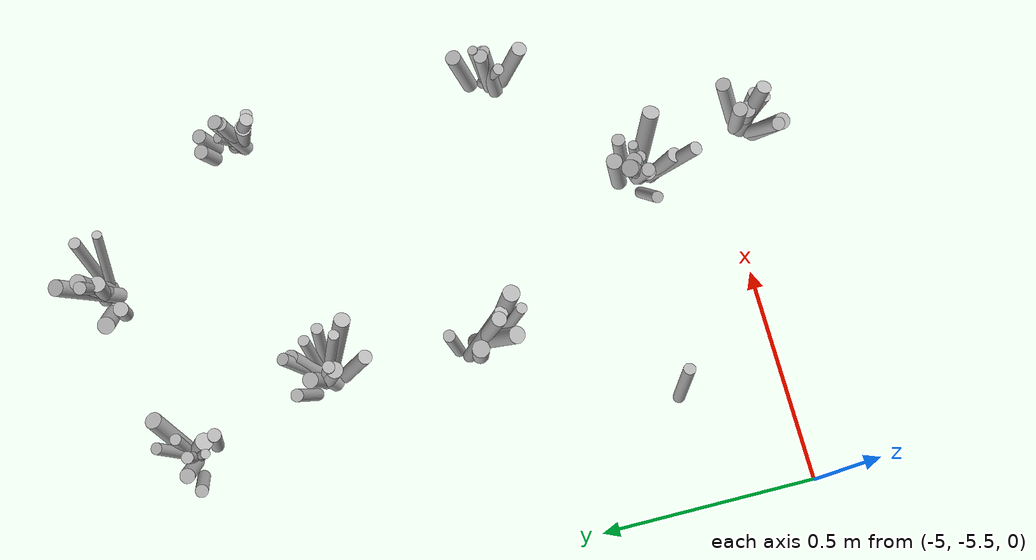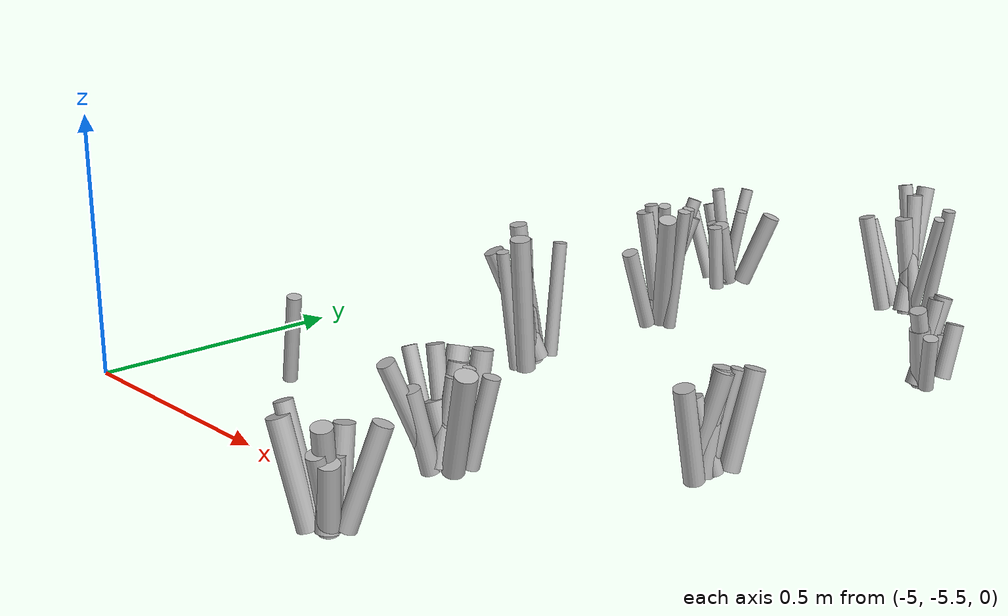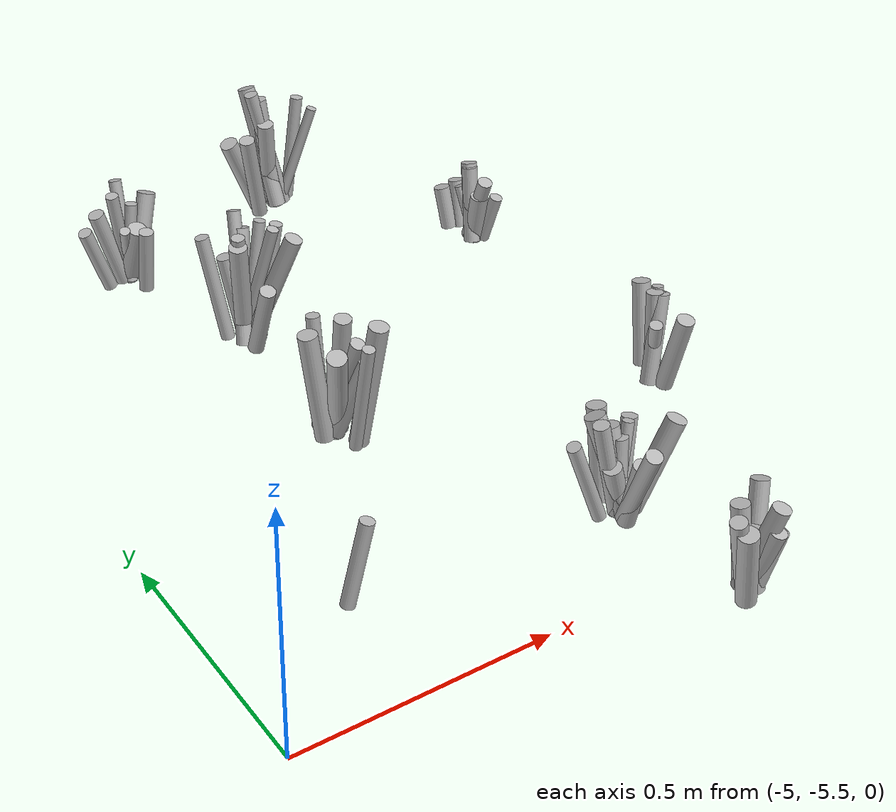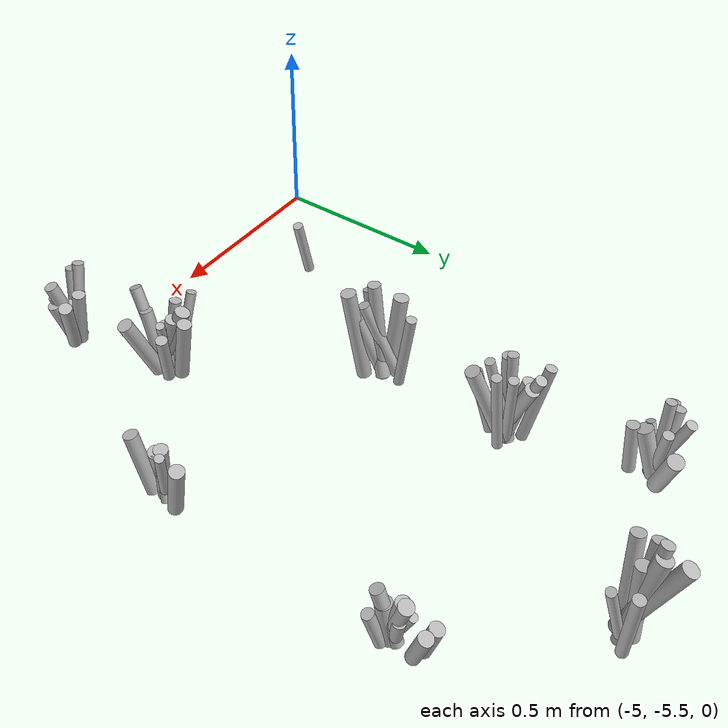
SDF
<sdf version="1.6">
 <world name="default">
  <model name="tussocks">
   <static>true</static>
   <link name="tuft1_0">
    <pose>-4.5446 -4.4314 0.1068 0 0.1881 2.2617</pose>
    <visual name="tuft1_0_v">
     <geometry><cylinder><radius>0.0142</radius><length>0.2321</length></cylinder></geometry>
     <material>
      <script>
       <uri>model://bushfire/materials/scripts</uri>
       <uri>model://bushfire/materials/textures</uri>
       <name>Bushfire/Tussock</name>
      </script>
     </material>
    </visual>
   </link>
   <link name="tuft1_1">
    <pose>-4.5042 -4.5470 0.0808 0 0.3341 4.7514</pose>
    <visual name="tuft1_1_v">
     <geometry><cylinder><radius>0.0164</radius><length>0.1757</length></cylinder></geometry>
     <material>
      <script>
       <uri>model://bushfire/materials/scripts</uri>
       <uri>model://bushfire/materials/textures</uri>
       <name>Bushfire/Tussock</name>
      </script>
     </material>
    </visual>
   </link>
   <link name="tuft1_2">
    <pose>-4.4842 -4.4979 0.1278 0 0.2650 5.5376</pose>
    <visual name="tuft1_2_v">
     <geometry><cylinder><radius>0.0122</radius><length>0.2778</length></cylinder></geometry>
     <material>
      <script>
       <uri>model://bushfire/materials/scripts</uri>
       <uri>model://bushfire/materials/textures</uri>
       <name>Bushfire/Foliage2</name>
      </script>
     </material>
    </visual>
   </link>
   <link name="tuft1_3">
    <pose>-4.5161 -4.4903 0.1133 0 0.1554 4.1128</pose>
    <visual name="tuft1_3_v">
     <geometry><cylinder><radius>0.0185</radius><length>0.2462</length></cylinder></geometry>
     <material>
      <script>
       <uri>model://bushfire/materials/scripts</uri>
       <uri>model://bushfire/materials/textures</uri>
       <name>Bushfire/Foliage2</name>
      </script>
     </material>
    </visual>
   </link>
   <link name="tuft1_4">
    <pose>-4.4976 -4.4518 0.1254 0 0.3795 1.2145</pose>
    <visual name="tuft1_4_v">
     <geometry><cylinder><radius>0.0139</radius><length>0.2725</length></cylinder></geometry>
     <material>
      <script>
       <uri>model://bushfire/materials/scripts</uri>
       <uri>model://bushfire/materials/textures</uri>
       <name>Bushfire/Tussock</name>
      </script>
     </material>
    </visual>
   </link>
   <link name="tuft1_5">
    <pose>-4.4618 -4.5160 0.1204 0 0.3725 5.5704</pose>
    <visual name="tuft1_5_v">
     <geometry><cylinder><radius>0.0182</radius><length>0.2617</length></cylinder></geometry>
     <material>
      <script>
       <uri>model://bushfire/materials/scripts</uri>
       <uri>model://bushfire/materials/textures</uri>
       <name>Bushfire/Foliage2</name>
      </script>
     </material>
    </visual>
   </link>
   <link name="tuft1_6">
    <pose>-4.5155 -4.4644 0.0887 0 0.2072 2.1664</pose>
    <visual name="tuft1_6_v">
     <geometry><cylinder><radius>0.0178</radius><length>0.1929</length></cylinder></geometry>
     <material>
      <script>
       <uri>model://bushfire/materials/scripts</uri>
       <uri>model://bushfire/materials/textures</uri>
       <name>Bushfire/Tussock</name>
      </script>
     </material>
    </visual>
   </link>
   <link name="tuft1_7">
    <pose>-4.4964 -4.4582 0.1091 0 0.3884 1.0586</pose>
    <visual name="tuft1_7_v">
     <geometry><cylinder><radius>0.0178</radius><length>0.2371</length></cylinder></geometry>
     <material>
      <script>
       <uri>model://bushfire/materials/scripts</uri>
       <uri>model://bushfire/materials/textures</uri>
       <name>Bushfire/Foliage2</name>
      </script>
     </material>
    </visual>
   </link>
   <link name="tuft1_8">
    <pose>-4.5124 -4.4846 0.1196 0 0.1055 4.0924</pose>
    <visual name="tuft1_8_v">
     <geometry><cylinder><radius>0.0137</radius><length>0.2601</length></cylinder></geometry>
     <material>
      <script>
       <uri>model://bushfire/materials/scripts</uri>
       <uri>model://bushfire/materials/textures</uri>
       <name>Bushfire/Foliage2</name>
      </script>
     </material>
    </visual>
   </link>
   <link name="tuft1_9">
    <pose>-4.4758 -4.4657 0.1192 0 0.2084 0.3467</pose>
    <visual name="tuft1_9_v">
     <geometry><cylinder><radius>0.0125</radius><length>0.2591</length></cylinder></geometry>
     <material>
      <script>
       <uri>model://bushfire/materials/scripts</uri>
       <uri>model://bushfire/materials/textures</uri>
       <name>Bushfire/Foliage2</name>
      </script>
     </material>
    </visual>
   </link>
   <link name="tuft1_10">
    <pose>-4.4538 -4.4863 0.1202 0 0.1659 6.1084</pose>
    <visual name="tuft1_10_v">
     <geometry><cylinder><radius>0.0130</radius><length>0.2612</length></cylinder></geometry>
     <material>
      <script>
       <uri>model://bushfire/materials/scripts</uri>
       <uri>model://bushfire/materials/textures</uri>
       <name>Bushfire/Foliage2</name>
      </script>
     </material>
    </visual>
   </link>
   <link name="tuft54_0">
    <pose>-4.5988 -4.1261 0.1008 0 0.2894 1.4062</pose>
    <visual name="tuft54_0_v">
     <geometry><cylinder><radius>0.0131</radius><length>0.2191</length></cylinder></geometry>
     <material>
      <script>
       <uri>model://bushfire/materials/scripts</uri>
       <uri>model://bushfire/materials/textures</uri>
       <name>Bushfire/Foliage2</name>
      </script>
     </material>
    </visual>
   </link>
   <link name="tuft54_1">
    <pose>-4.5914 -4.1393 0.0787 0 0.1779 0.4872</pose>
    <visual name="tuft54_1_v">
     <geometry><cylinder><radius>0.0131</radius><length>0.1710</length></cylinder></geometry>
     <material>
      <script>
       <uri>model://bushfire/materials/scripts</uri>
       <uri>model://bushfire/materials/textures</uri>
       <name>Bushfire/Tussock</name>
      </script>
     </material>
    </visual>
   </link>
   <link name="tuft54_2">
    <pose>-4.5980 -4.1659 0.0668 0 0.3237 4.8944</pose>
    <visual name="tuft54_2_v">
     <geometry><cylinder><radius>0.0200</radius><length>0.1451</length></cylinder></geometry>
     <material>
      <script>
       <uri>model://bushfire/materials/scripts</uri>
       <uri>model://bushfire/materials/textures</uri>
       <name>Bushfire/Tussock</name>
      </script>
     </material>
    </visual>
   </link>
   <link name="tuft54_3">
    <pose>-4.6388 -4.1432 0.0822 0 0.2684 3.0982</pose>
    <visual name="tuft54_3_v">
     <geometry><cylinder><radius>0.0168</radius><length>0.1787</length></cylinder></geometry>
     <material>
      <script>
       <uri>model://bushfire/materials/scripts</uri>
       <uri>model://bushfire/materials/textures</uri>
       <name>Bushfire/Foliage2</name>
      </script>
     </material>
    </visual>
   </link>
   <link name="tuft54_4">
    <pose>-4.6160 -4.1507 0.1009 0 0.1346 3.5373</pose>
    <visual name="tuft54_4_v">
     <geometry><cylinder><radius>0.0133</radius><length>0.2193</length></cylinder></geometry>
     <material>
      <script>
       <uri>model://bushfire/materials/scripts</uri>
       <uri>model://bushfire/materials/textures</uri>
       <name>Bushfire/Foliage2</name>
      </script>
     </material>
    </visual>
   </link>
   <link name="tuft54_5">
    <pose>-4.5877 -4.2057 0.0664 0 0.1088 4.9423</pose>
    <visual name="tuft54_5_v">
     <geometry><cylinder><radius>0.0154</radius><length>0.1444</length></cylinder></geometry>
     <material>
      <script>
       <uri>model://bushfire/materials/scripts</uri>
       <uri>model://bushfire/materials/textures</uri>
       <name>Bushfire/Foliage2</name>
      </script>
     </material>
    </visual>
   </link>
   <link name="tuft54_6">
    <pose>-4.6750 -4.1582 0.0724 0 0.3174 3.3224</pose>
    <visual name="tuft54_6_v">
     <geometry><cylinder><radius>0.0145</radius><length>0.1575</length></cylinder></geometry>
     <material>
      <script>
       <uri>model://bushfire/materials/scripts</uri>
       <uri>model://bushfire/materials/textures</uri>
       <name>Bushfire/Tussock</name>
      </script>
     </material>
    </visual>
   </link>
   <link name="tuft54_7">
    <pose>-4.6083 -4.1586 0.0690 0 0.4115 4.2774</pose>
    <visual name="tuft54_7_v">
     <geometry><cylinder><radius>0.0110</radius><length>0.1500</length></cylinder></geometry>
     <material>
      <script>
       <uri>model://bushfire/materials/scripts</uri>
       <uri>model://bushfire/materials/textures</uri>
       <name>Bushfire/Foliage2</name>
      </script>
     </material>
    </visual>
   </link>
   <link name="tuft54_8">
    <pose>-4.5495 -4.1097 0.0764 0 0.3818 0.5899</pose>
    <visual name="tuft54_8_v">
     <geometry><cylinder><radius>0.0194</radius><length>0.1660</length></cylinder></geometry>
     <material>
      <script>
       <uri>model://bushfire/materials/scripts</uri>
       <uri>model://bushfire/materials/textures</uri>
       <name>Bushfire/Tussock</name>
      </script>
     </material>
    </visual>
   </link>
   <link name="tuft74_0">
    <pose>-4.1282 -5.5980 0.0577 0 0.2500 5.8108</pose>
    <visual name="tuft74_0_v">
     <geometry><cylinder><radius>0.0182</radius><length>0.1254</length></cylinder></geometry>
     <material>
      <script>
       <uri>model://bushfire/materials/scripts</uri>
       <uri>model://bushfire/materials/textures</uri>
       <name>Bushfire/Foliage2</name>
      </script>
     </material>
    </visual>
   </link>
   <link name="tuft74_1">
    <pose>-4.1438 -5.5845 0.0549 0 0.1490 1.7702</pose>
    <visual name="tuft74_1_v">
     <geometry><cylinder><radius>0.0196</radius><length>0.1194</length></cylinder></geometry>
     <material>
      <script>
       <uri>model://bushfire/materials/scripts</uri>
       <uri>model://bushfire/materials/textures</uri>
       <name>Bushfire/Tussock</name>
      </script>
     </material>
    </visual>
   </link>
   <link name="tuft74_2">
    <pose>-4.1505 -5.5584 0.0753 0 0.1431 1.8139</pose>
    <visual name="tuft74_2_v">
     <geometry><cylinder><radius>0.0171</radius><length>0.1637</length></cylinder></geometry>
     <material>
      <script>
       <uri>model://bushfire/materials/scripts</uri>
       <uri>model://bushfire/materials/textures</uri>
       <name>Bushfire/Tussock</name>
      </script>
     </material>
    </visual>
   </link>
   <link name="tuft74_3">
    <pose>-4.1898 -5.6168 0.0835 0 0.2369 3.6461</pose>
    <visual name="tuft74_3_v">
     <geometry><cylinder><radius>0.0188</radius><length>0.1815</length></cylinder></geometry>
     <material>
      <script>
       <uri>model://bushfire/materials/scripts</uri>
       <uri>model://bushfire/materials/textures</uri>
       <name>Bushfire/Foliage2</name>
      </script>
     </material>
    </visual>
   </link>
   <link name="tuft74_4">
    <pose>-4.1393 -5.5935 0.0853 0 0.2703 5.5599</pose>
    <visual name="tuft74_4_v">
     <geometry><cylinder><radius>0.0173</radius><length>0.1855</length></cylinder></geometry>
     <material>
      <script>
       <uri>model://bushfire/materials/scripts</uri>
       <uri>model://bushfire/materials/textures</uri>
       <name>Bushfire/Foliage2</name>
      </script>
     </material>
    </visual>
   </link>
   <link name="tuft74_5">
    <pose>-4.1371 -5.6010 0.0645 0 0.2687 5.2008</pose>
    <visual name="tuft74_5_v">
     <geometry><cylinder><radius>0.0159</radius><length>0.1402</length></cylinder></geometry>
     <material>
      <script>
       <uri>model://bushfire/materials/scripts</uri>
       <uri>model://bushfire/materials/textures</uri>
       <name>Bushfire/Foliage2</name>
      </script>
     </material>
    </visual>
   </link>
   <link name="tuft74_6">
    <pose>-4.1917 -5.6038 0.0927 0 0.2678 3.4027</pose>
    <visual name="tuft74_6_v">
     <geometry><cylinder><radius>0.0155</radius><length>0.2016</length></cylinder></geometry>
     <material>
      <script>
       <uri>model://bushfire/materials/scripts</uri>
       <uri>model://bushfire/materials/textures</uri>
       <name>Bushfire/Tussock</name>
      </script>
     </material>
    </visual>
   </link>
   <link name="tuft74_7">
    <pose>-4.1079 -5.5468 0.0821 0 0.3442 0.9031</pose>
    <visual name="tuft74_7_v">
     <geometry><cylinder><radius>0.0172</radius><length>0.1784</length></cylinder></geometry>
     <material>
      <script>
       <uri>model://bushfire/materials/scripts</uri>
       <uri>model://bushfire/materials/textures</uri>
       <name>Bushfire/Tussock</name>
      </script>
     </material>
    </visual>
   </link>
   <link name="tuft83_0">
    <pose>-3.8984 -5.0197 0.0505 0 0.2912 0.9681</pose>
    <visual name="tuft83_0_v">
     <geometry><cylinder><radius>0.0136</radius><length>0.1097</length></cylinder></geometry>
     <material>
      <script>
       <uri>model://bushfire/materials/scripts</uri>
       <uri>model://bushfire/materials/textures</uri>
       <name>Bushfire/Tussock</name>
      </script>
     </material>
    </visual>
   </link>
   <link name="tuft83_1">
    <pose>-3.8834 -5.0008 0.0859 0 0.2292 0.9046</pose>
    <visual name="tuft83_1_v">
     <geometry><cylinder><radius>0.0114</radius><length>0.1867</length></cylinder></geometry>
     <material>
      <script>
       <uri>model://bushfire/materials/scripts</uri>
       <uri>model://bushfire/materials/textures</uri>
       <name>Bushfire/Foliage2</name>
      </script>
     </material>
    </visual>
   </link>
   <link name="tuft83_3">
    <pose>-3.8915 -5.0725 0.0801 0 0.2196 4.8630</pose>
    <visual name="tuft83_3_v">
     <geometry><cylinder><radius>0.0178</radius><length>0.1741</length></cylinder></geometry>
     <material>
      <script>
       <uri>model://bushfire/materials/scripts</uri>
       <uri>model://bushfire/materials/textures</uri>
       <name>Bushfire/Tussock</name>
      </script>
     </material>
    </visual>
   </link>
   <link name="tuft83_5">
    <pose>-3.8909 -5.0139 0.0842 0 0.1884 0.7054</pose>
    <visual name="tuft83_5_v">
     <geometry><cylinder><radius>0.0118</radius><length>0.1830</length></cylinder></geometry>
     <material>
      <script>
       <uri>model://bushfire/materials/scripts</uri>
       <uri>model://bushfire/materials/textures</uri>
       <name>Bushfire/Tussock</name>
      </script>
     </material>
    </visual>
   </link>
   <link name="tuft83_6">
    <pose>-3.8979 -5.0199 0.0855 0 0.2604 0.6688</pose>
    <visual name="tuft83_6_v">
     <geometry><cylinder><radius>0.0170</radius><length>0.1858</length></cylinder></geometry>
     <material>
      <script>
       <uri>model://bushfire/materials/scripts</uri>
       <uri>model://bushfire/materials/textures</uri>
       <name>Bushfire/Tussock</name>
      </script>
     </material>
    </visual>
   </link>
   <link name="tuft83_8">
    <pose>-3.8951 -5.0116 0.0856 0 0.1600 1.1538</pose>
    <visual name="tuft83_8_v">
     <geometry><cylinder><radius>0.0167</radius><length>0.1860</length></cylinder></geometry>
     <material>
      <script>
       <uri>model://bushfire/materials/scripts</uri>
       <uri>model://bushfire/materials/textures</uri>
       <name>Bushfire/Foliage2</name>
      </script>
     </material>
    </visual>
   </link>
   <link name="tuft83_10">
    <pose>-3.8789 -4.9578 0.0803 0 0.2483 1.2593</pose>
    <visual name="tuft83_10_v">
     <geometry><cylinder><radius>0.0181</radius><length>0.1745</length></cylinder></geometry>
     <material>
      <script>
       <uri>model://bushfire/materials/scripts</uri>
       <uri>model://bushfire/materials/textures</uri>
       <name>Bushfire/Foliage2</name>
      </script>
     </material>
    </visual>
   </link>
   <link name="tuft83_11">
    <pose>-3.9005 -5.0224 0.0640 0 0.2754 4.0171</pose>
    <visual name="tuft83_11_v">
     <geometry><cylinder><radius>0.0131</radius><length>0.1392</length></cylinder></geometry>
     <material>
      <script>
       <uri>model://bushfire/materials/scripts</uri>
       <uri>model://bushfire/materials/textures</uri>
       <name>Bushfire/Tussock</name>
      </script>
     </material>
    </visual>
   </link>
   <link name="tuft97_5">
    <pose>-4.7240 -5.2579 0.0814 0 0.2148 6.1157</pose>
    <visual name="tuft97_5_v">
     <geometry><cylinder><radius>0.0139</radius><length>0.1770</length></cylinder></geometry>
     <material>
      <script>
       <uri>model://bushfire/materials/scripts</uri>
       <uri>model://bushfire/materials/textures</uri>
       <name>Bushfire/Foliage2</name>
      </script>
     </material>
    </visual>
   </link>
   <link name="tuft132_0">
    <pose>-4.2312 -5.2998 0.0951 0 0.2023 2.8387</pose>
    <visual name="tuft132_0_v">
     <geometry><cylinder><radius>0.0154</radius><length>0.2067</length></cylinder></geometry>
     <material>
      <script>
       <uri>model://bushfire/materials/scripts</uri>
       <uri>model://bushfire/materials/textures</uri>
       <name>Bushfire/Tussock</name>
      </script>
     </material>
    </visual>
   </link>
   <link name="tuft132_1">
    <pose>-4.2164 -5.3552 0.0708 0 0.2354 4.5913</pose>
    <visual name="tuft132_1_v">
     <geometry><cylinder><radius>0.0173</radius><length>0.1539</length></cylinder></geometry>
     <material>
      <script>
       <uri>model://bushfire/materials/scripts</uri>
       <uri>model://bushfire/materials/textures</uri>
       <name>Bushfire/Foliage2</name>
      </script>
     </material>
    </visual>
   </link>
   <link name="tuft132_2">
    <pose>-4.2089 -5.3023 0.0727 0 0.1460 1.1917</pose>
    <visual name="tuft132_2_v">
     <geometry><cylinder><radius>0.0156</radius><length>0.1579</length></cylinder></geometry>
     <material>
      <script>
       <uri>model://bushfire/materials/scripts</uri>
       <uri>model://bushfire/materials/textures</uri>
       <name>Bushfire/Foliage2</name>
      </script>
     </material>
    </visual>
   </link>
   <link name="tuft132_3">
    <pose>-4.1970 -5.2955 0.0826 0 0.2544 0.6738</pose>
    <visual name="tuft132_3_v">
     <geometry><cylinder><radius>0.0113</radius><length>0.1795</length></cylinder></geometry>
     <material>
      <script>
       <uri>model://bushfire/materials/scripts</uri>
       <uri>model://bushfire/materials/textures</uri>
       <name>Bushfire/Foliage2</name>
      </script>
     </material>
    </visual>
   </link>
   <link name="tuft132_4">
    <pose>-4.1685 -5.2681 0.0748 0 0.2310 0.7381</pose>
    <visual name="tuft132_4_v">
     <geometry><cylinder><radius>0.0153</radius><length>0.1627</length></cylinder></geometry>
     <material>
      <script>
       <uri>model://bushfire/materials/scripts</uri>
       <uri>model://bushfire/materials/textures</uri>
       <name>Bushfire/Tussock</name>
      </script>
     </material>
    </visual>
   </link>
   <link name="tuft132_5">
    <pose>-4.2098 -5.2447 0.0879 0 0.1861 1.5600</pose>
    <visual name="tuft132_5_v">
     <geometry><cylinder><radius>0.0184</radius><length>0.1910</length></cylinder></geometry>
     <material>
      <script>
       <uri>model://bushfire/materials/scripts</uri>
       <uri>model://bushfire/materials/textures</uri>
       <name>Bushfire/Tussock</name>
      </script>
     </material>
    </visual>
   </link>
   <link name="tuft132_6">
    <pose>-4.2807 -5.3015 0.0886 0 0.3475 3.0734</pose>
    <visual name="tuft132_6_v">
     <geometry><cylinder><radius>0.0133</radius><length>0.1926</length></cylinder></geometry>
     <material>
      <script>
       <uri>model://bushfire/materials/scripts</uri>
       <uri>model://bushfire/materials/textures</uri>
       <name>Bushfire/Tussock</name>
      </script>
     </material>
    </visual>
   </link>
   <link name="tuft132_7">
    <pose>-4.2173 -5.3077 0.0528 0 0.2961 3.3478</pose>
    <visual name="tuft132_7_v">
     <geometry><cylinder><radius>0.0183</radius><length>0.1147</length></cylinder></geometry>
     <material>
      <script>
       <uri>model://bushfire/materials/scripts</uri>
       <uri>model://bushfire/materials/textures</uri>
       <name>Bushfire/Foliage2</name>
      </script>
     </material>
    </visual>
   </link>
   <link name="tuft132_8">
    <pose>-4.2117 -5.2975 0.0829 0 0.2725 1.7146</pose>
    <visual name="tuft132_8_v">
     <geometry><cylinder><radius>0.0182</radius><length>0.1802</length></cylinder></geometry>
     <material>
      <script>
       <uri>model://bushfire/materials/scripts</uri>
       <uri>model://bushfire/materials/textures</uri>
       <name>Bushfire/Tussock</name>
      </script>
     </material>
    </visual>
   </link>
   <link name="tuft132_9">
    <pose>-4.2222 -5.3714 0.0981 0 0.3893 4.5338</pose>
    <visual name="tuft132_9_v">
     <geometry><cylinder><radius>0.0157</radius><length>0.2133</length></cylinder></geometry>
     <material>
      <script>
       <uri>model://bushfire/materials/scripts</uri>
       <uri>model://bushfire/materials/textures</uri>
       <name>Bushfire/Tussock</name>
      </script>
     </material>
    </visual>
   </link>
   <link name="tuft132_10">
    <pose>-4.2182 -5.2909 0.0936 0 0.3894 2.0382</pose>
    <visual name="tuft132_10_v">
     <geometry><cylinder><radius>0.0199</radius><length>0.2036</length></cylinder></geometry>
     <material>
      <script>
       <uri>model://bushfire/materials/scripts</uri>
       <uri>model://bushfire/materials/textures</uri>
       <name>Bushfire/Foliage2</name>
      </script>
     </material>
    </visual>
   </link>
   <link name="tuft132_11">
    <pose>-4.1516 -5.3272 0.0920 0 0.3504 5.9411</pose>
    <visual name="tuft132_11_v">
     <geometry><cylinder><radius>0.0195</radius><length>0.2000</length></cylinder></geometry>
     <material>
      <script>
       <uri>model://bushfire/materials/scripts</uri>
       <uri>model://bushfire/materials/textures</uri>
       <name>Bushfire/Foliage2</name>
      </script>
     </material>
    </visual>
   </link>
   <link name="tuft147_0">
    <pose>-4.1955 -4.0250 0.1184 0 0.1370 2.1381</pose>
    <visual name="tuft147_0_v">
     <geometry><cylinder><radius>0.0184</radius><length>0.2574</length></cylinder></geometry>
     <material>
      <script>
       <uri>model://bushfire/materials/scripts</uri>
       <uri>model://bushfire/materials/textures</uri>
       <name>Bushfire/Tussock</name>
      </script>
     </material>
    </visual>
   </link>
   <link name="tuft147_1">
    <pose>-4.1980 -4.0076 0.1251 0 0.3410 1.7628</pose>
    <visual name="tuft147_1_v">
     <geometry><cylinder><radius>0.0186</radius><length>0.2720</length></cylinder></geometry>
     <material>
      <script>
       <uri>model://bushfire/materials/scripts</uri>
       <uri>model://bushfire/materials/textures</uri>
       <name>Bushfire/Tussock</name>
      </script>
     </material>
    </visual>
   </link>
   <link name="tuft147_2">
    <pose>-4.2546 -4.0682 0.0954 0 0.2148 3.7397</pose>
    <visual name="tuft147_2_v">
     <geometry><cylinder><radius>0.0168</radius><length>0.2074</length></cylinder></geometry>
     <material>
      <script>
       <uri>model://bushfire/materials/scripts</uri>
       <uri>model://bushfire/materials/textures</uri>
       <name>Bushfire/Tussock</name>
      </script>
     </material>
    </visual>
   </link>
   <link name="tuft147_4">
    <pose>-4.1945 -4.0269 0.1289 0 0.2250 2.7760</pose>
    <visual name="tuft147_4_v">
     <geometry><cylinder><radius>0.0146</radius><length>0.2801</length></cylinder></geometry>
     <material>
      <script>
       <uri>model://bushfire/materials/scripts</uri>
       <uri>model://bushfire/materials/textures</uri>
       <name>Bushfire/Foliage2</name>
      </script>
     </material>
    </visual>
   </link>
   <link name="tuft147_5">
    <pose>-4.1971 -4.0309 0.0960 0 0.1355 4.0709</pose>
    <visual name="tuft147_5_v">
     <geometry><cylinder><radius>0.0179</radius><length>0.2087</length></cylinder></geometry>
     <material>
      <script>
       <uri>model://bushfire/materials/scripts</uri>
       <uri>model://bushfire/materials/textures</uri>
       <name>Bushfire/Tussock</name>
      </script>
     </material>
    </visual>
   </link>
   <link name="tuft147_6">
    <pose>-4.1292 -4.0192 0.1100 0 0.1547 0.1191</pose>
    <visual name="tuft147_6_v">
     <geometry><cylinder><radius>0.0134</radius><length>0.2391</length></cylinder></geometry>
     <material>
      <script>
       <uri>model://bushfire/materials/scripts</uri>
       <uri>model://bushfire/materials/textures</uri>
       <name>Bushfire/Tussock</name>
      </script>
     </material>
    </visual>
   </link>
   <link name="tuft147_7">
    <pose>-4.1362 -4.0518 0.1082 0 0.3245 5.8799</pose>
    <visual name="tuft147_7_v">
     <geometry><cylinder><radius>0.0110</radius><length>0.2352</length></cylinder></geometry>
     <material>
      <script>
       <uri>model://bushfire/materials/scripts</uri>
       <uri>model://bushfire/materials/textures</uri>
       <name>Bushfire/Tussock</name>
      </script>
     </material>
    </visual>
   </link>
   <link name="tuft147_8">
    <pose>-4.2616 -4.0347 0.0876 0 0.3717 3.2555</pose>
    <visual name="tuft147_8_v">
     <geometry><cylinder><radius>0.0193</radius><length>0.1905</length></cylinder></geometry>
     <material>
      <script>
       <uri>model://bushfire/materials/scripts</uri>
       <uri>model://bushfire/materials/textures</uri>
       <name>Bushfire/Foliage2</name>
      </script>
     </material>
    </visual>
   </link>
   <link name="tuft164_0">
    <pose>-3.9207 -4.3298 0.0431 0 0.2490 1.8646</pose>
    <visual name="tuft164_0_v">
     <geometry><cylinder><radius>0.0171</radius><length>0.0938</length></cylinder></geometry>
     <material>
      <script>
       <uri>model://bushfire/materials/scripts</uri>
       <uri>model://bushfire/materials/textures</uri>
       <name>Bushfire/Foliage2</name>
      </script>
     </material>
    </visual>
   </link>
   <link name="tuft164_1">
    <pose>-3.8983 -4.4170 0.0737 0 0.3089 4.8150</pose>
    <visual name="tuft164_1_v">
     <geometry><cylinder><radius>0.0158</radius><length>0.1601</length></cylinder></geometry>
     <material>
      <script>
       <uri>model://bushfire/materials/scripts</uri>
       <uri>model://bushfire/materials/textures</uri>
       <name>Bushfire/Tussock</name>
      </script>
     </material>
    </visual>
   </link>
   <link name="tuft164_3">
    <pose>-3.8996 -4.4173 0.0532 0 0.1696 4.7508</pose>
    <visual name="tuft164_3_v">
     <geometry><cylinder><radius>0.0193</radius><length>0.1155</length></cylinder></geometry>
     <material>
      <script>
       <uri>model://bushfire/materials/scripts</uri>
       <uri>model://bushfire/materials/textures</uri>
       <name>Bushfire/Foliage2</name>
      </script>
     </material>
    </visual>
   </link>
   <link name="tuft164_4">
    <pose>-3.9002 -4.3967 0.0770 0 0.2046 1.2372</pose>
    <visual name="tuft164_4_v">
     <geometry><cylinder><radius>0.0166</radius><length>0.1674</length></cylinder></geometry>
     <material>
      <script>
       <uri>model://bushfire/materials/scripts</uri>
       <uri>model://bushfire/materials/textures</uri>
       <name>Bushfire/Foliage2</name>
      </script>
     </material>
    </visual>
   </link>
   <link name="tuft164_5">
    <pose>-3.9027 -4.3864 0.0541 0 0.3914 1.7860</pose>
    <visual name="tuft164_5_v">
     <geometry><cylinder><radius>0.0113</radius><length>0.1177</length></cylinder></geometry>
     <material>
      <script>
       <uri>model://bushfire/materials/scripts</uri>
       <uri>model://bushfire/materials/textures</uri>
       <name>Bushfire/Foliage2</name>
      </script>
     </material>
    </visual>
   </link>
   <link name="tuft164_6">
    <pose>-3.8739 -4.4302 0.0503 0 0.2572 5.3874</pose>
    <visual name="tuft164_6_v">
     <geometry><cylinder><radius>0.0140</radius><length>0.1094</length></cylinder></geometry>
     <material>
      <script>
       <uri>model://bushfire/materials/scripts</uri>
       <uri>model://bushfire/materials/textures</uri>
       <name>Bushfire/Tussock</name>
      </script>
     </material>
    </visual>
   </link>
   <link name="tuft164_8">
    <pose>-3.8969 -4.3923 0.0462 0 0.2000 0.9508</pose>
    <visual name="tuft164_8_v">
     <geometry><cylinder><radius>0.0150</radius><length>0.1005</length></cylinder></geometry>
     <material>
      <script>
       <uri>model://bushfire/materials/scripts</uri>
       <uri>model://bushfire/materials/textures</uri>
       <name>Bushfire/Foliage2</name>
      </script>
     </material>
    </visual>
   </link>
   <link name="tuft164_9">
    <pose>-3.8990 -4.3940 0.0799 0 0.3066 1.1729</pose>
    <visual name="tuft164_9_v">
     <geometry><cylinder><radius>0.0172</radius><length>0.1736</length></cylinder></geometry>
     <material>
      <script>
       <uri>model://bushfire/materials/scripts</uri>
       <uri>model://bushfire/materials/textures</uri>
       <name>Bushfire/Tussock</name>
      </script>
     </material>
    </visual>
   </link>
   <link name="tuft164_10">
    <pose>-3.8915 -4.3363 0.0479 0 0.2673 1.4266</pose>
    <visual name="tuft164_10_v">
     <geometry><cylinder><radius>0.0169</radius><length>0.1042</length></cylinder></geometry>
     <material>
      <script>
       <uri>model://bushfire/materials/scripts</uri>
       <uri>model://bushfire/materials/textures</uri>
       <name>Bushfire/Foliage2</name>
      </script>
     </material>
    </visual>
   </link>
   <link name="tuft184_0">
    <pose>-4.5249 -4.8697 0.1100 0 0.3779 4.1772</pose>
    <visual name="tuft184_0_v">
     <geometry><cylinder><radius>0.0193</radius><length>0.2392</length></cylinder></geometry>
     <material>
      <script>
       <uri>model://bushfire/materials/scripts</uri>
       <uri>model://bushfire/materials/textures</uri>
       <name>Bushfire/Foliage2</name>
      </script>
     </material>
    </visual>
   </link>
   <link name="tuft184_1">
    <pose>-4.5122 -4.8555 0.1321 0 0.1304 4.6383</pose>
    <visual name="tuft184_1_v">
     <geometry><cylinder><radius>0.0167</radius><length>0.2872</length></cylinder></geometry>
     <material>
      <script>
       <uri>model://bushfire/materials/scripts</uri>
       <uri>model://bushfire/materials/textures</uri>
       <name>Bushfire/Tussock</name>
      </script>
     </material>
    </visual>
   </link>
   <link name="tuft184_2">
    <pose>-4.4987 -4.9119 0.1128 0 0.1592 4.9100</pose>
    <visual name="tuft184_2_v">
     <geometry><cylinder><radius>0.0124</radius><length>0.2453</length></cylinder></geometry>
     <material>
      <script>
       <uri>model://bushfire/materials/scripts</uri>
       <uri>model://bushfire/materials/textures</uri>
       <name>Bushfire/Foliage2</name>
      </script>
     </material>
    </visual>
   </link>
   <link name="tuft184_3">
    <pose>-4.4753 -4.8977 0.1263 0 0.1546 5.3368</pose>
    <visual name="tuft184_3_v">
     <geometry><cylinder><radius>0.0193</radius><length>0.2747</length></cylinder></geometry>
     <material>
      <script>
       <uri>model://bushfire/materials/scripts</uri>
       <uri>model://bushfire/materials/textures</uri>
       <name>Bushfire/Foliage2</name>
      </script>
     </material>
    </visual>
   </link>
   <link name="tuft184_4">
    <pose>-4.4962 -4.8705 0.0880 0 0.3494 5.2979</pose>
    <visual name="tuft184_4_v">
     <geometry><cylinder><radius>0.0162</radius><length>0.1913</length></cylinder></geometry>
     <material>
      <script>
       <uri>model://bushfire/materials/scripts</uri>
       <uri>model://bushfire/materials/textures</uri>
       <name>Bushfire/Tussock</name>
      </script>
     </material>
    </visual>
   </link>
   <link name="tuft184_5">
    <pose>-4.5111 -4.8483 0.1087 0 0.3785 5.1990</pose>
    <visual name="tuft184_5_v">
     <geometry><cylinder><radius>0.0154</radius><length>0.2364</length></cylinder></geometry>
     <material>
      <script>
       <uri>model://bushfire/materials/scripts</uri>
       <uri>model://bushfire/materials/textures</uri>
       <name>Bushfire/Foliage2</name>
      </script>
     </material>
    </visual>
   </link>
   <link name="tuft184_6">
    <pose>-4.5127 -4.7777 0.1051 0 0.1198 1.5858</pose>
    <visual name="tuft184_6_v">
     <geometry><cylinder><radius>0.0136</radius><length>0.2285</length></cylinder></geometry>
     <material>
      <script>
       <uri>model://bushfire/materials/scripts</uri>
       <uri>model://bushfire/materials/textures</uri>
       <name>Bushfire/Tussock</name>
      </script>
     </material>
    </visual>
   </link>
   <link name="tuft184_7">
    <pose>-4.5467 -4.8296 0.1090 0 0.1156 2.6730</pose>
    <visual name="tuft184_7_v">
     <geometry><cylinder><radius>0.0195</radius><length>0.2369</length></cylinder></geometry>
     <material>
      <script>
       <uri>model://bushfire/materials/scripts</uri>
       <uri>model://bushfire/materials/textures</uri>
       <name>Bushfire/Tussock</name>
      </script>
     </material>
    </visual>
   </link>
  </model>
 </world>
</sdf>
